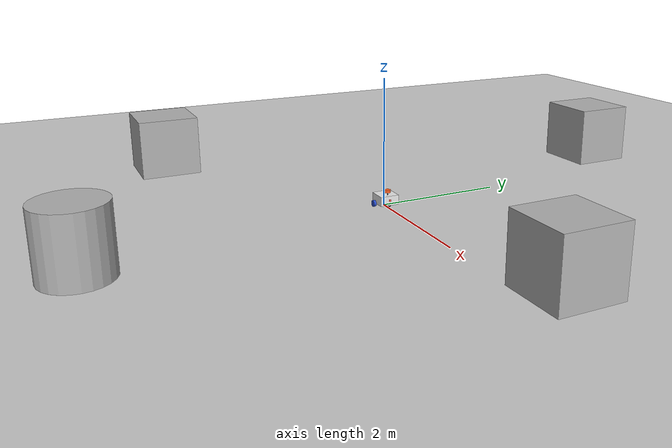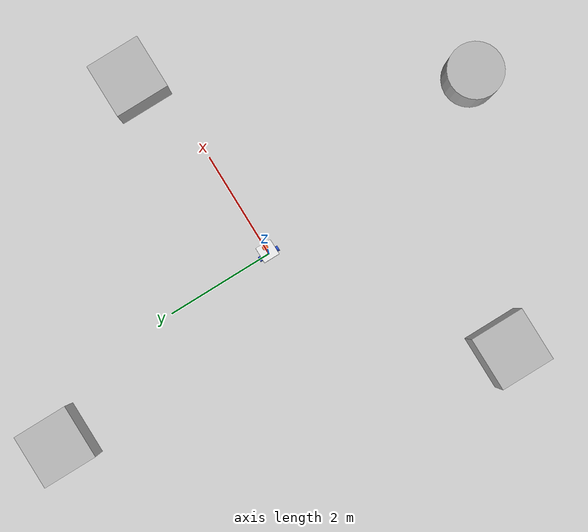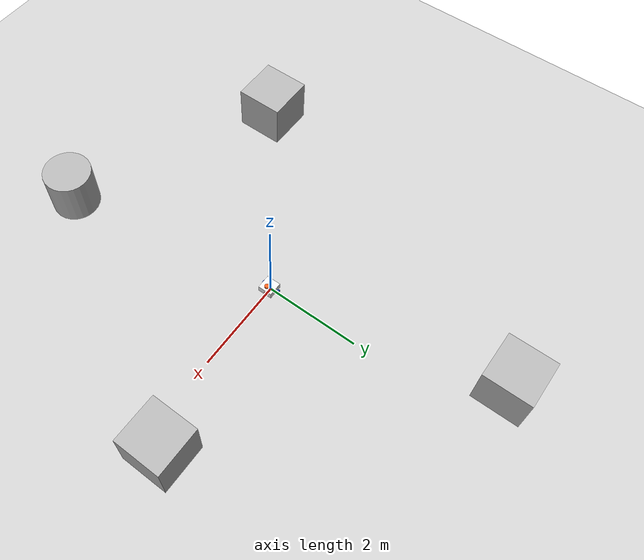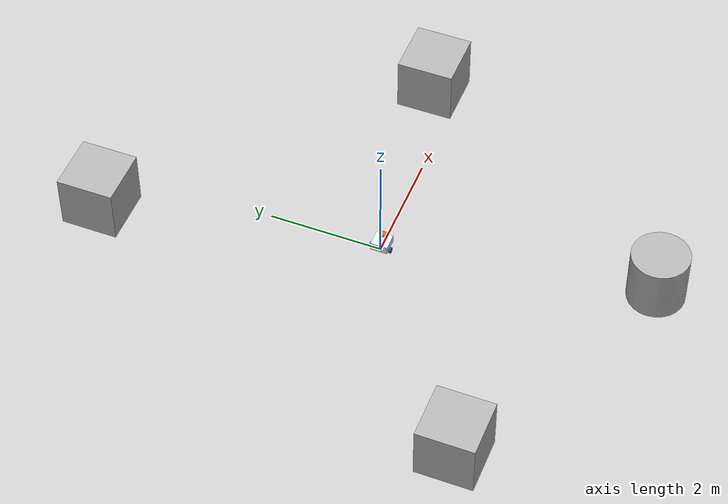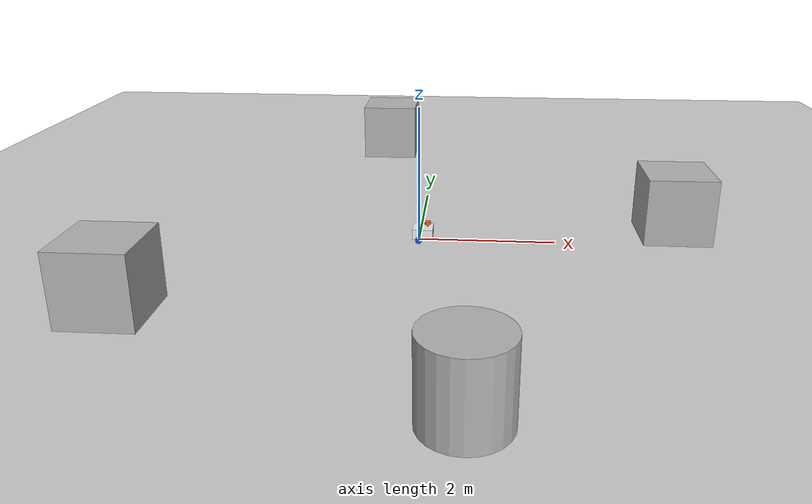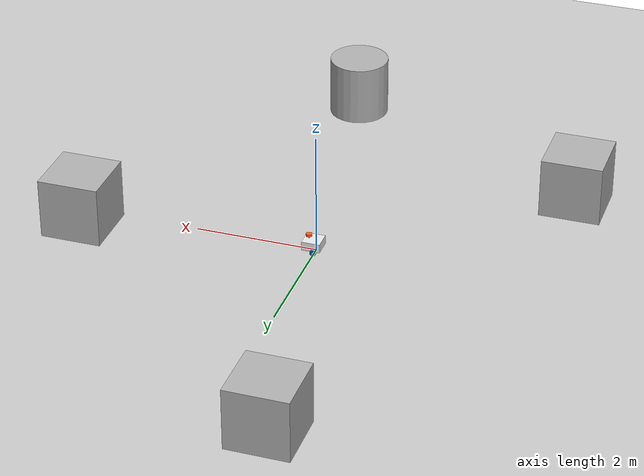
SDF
<sdf version='1.9'>
  <world name='empty'>
    <physics name='1ms' type='ignored'>
      <max_step_size>0.001</max_step_size>
      <real_time_factor>1</real_time_factor>
      <real_time_update_rate>1000</real_time_update_rate>
    </physics>
    <plugin name='gz::sim::systems::Physics' filename='gz-sim-physics-system'/>
    <plugin name='gz::sim::systems::UserCommands' filename='gz-sim-user-commands-system'/>
    <plugin name='gz::sim::systems::SceneBroadcaster' filename='gz-sim-scene-broadcaster-system'/>
    <plugin name='gz::sim::systems::Sensors' filename='gz-sim-sensors-system'>
      <render_engine>ogre2</render_engine>
    </plugin>
    <plugin name='gz::sim::systems::Contact' filename='gz-sim-contact-system'/>
    <gravity>0 0 -9.8</gravity>
    <magnetic_field>6e-06 2.3e-05 -4.2e-05</magnetic_field>
    <atmosphere type='adiabatic'/>
    <scene>
      <ambient>0.4 0.4 0.4 1</ambient>
      <background>0.7 0.7 0.7 1</background>
      <shadows>true</shadows>
    </scene>
    <model name='ground_plane'>
      <static>true</static>
      <link name='link'>
        <collision name='collision'>
          <geometry>
            <plane>
              <normal>0 0 1</normal>
              <size>100 100</size>
            </plane>
          </geometry>
          <surface>
            <friction>
              <ode/>
            </friction>
            <bounce/>
            <contact/>
          </surface>
        </collision>
        <visual name='visual'>
          <geometry>
            <plane>
              <normal>0 0 1</normal>
              <size>100 100</size>
            </plane>
          </geometry>
          <material>
            <ambient>0.8 0.8 0.8 1</ambient>
            <diffuse>0.8 0.8 0.8 1</diffuse>
            <specular>0.8 0.8 0.8 1</specular>
          </material>
        </visual>
        <pose>0 0 0 0 -0 0</pose>
        <inertial>
          <pose>0 0 0 0 -0 0</pose>
          <mass>1</mass>
          <inertia>
            <ixx>1</ixx>
            <ixy>0</ixy>
            <ixz>0</ixz>
            <iyy>1</iyy>
            <iyz>0</iyz>
            <izz>1</izz>
          </inertia>
        </inertial>
        <enable_wind>false</enable_wind>
      </link>
      <pose>0 0 0 0 -0 0</pose>
      <self_collide>false</self_collide>
    </model>
    <model name='my_bot'>
      <link name='base_link'>
        <inertial>
          <pose>0.073143 0 0.083857 0 -0 0</pose>
          <mass>0.69999999999999996</mass>
          <inertia>
            <ixx>0.0072478200000000003</ixx>
            <ixy>0</ixy>
            <ixz>-0.00016791399999999999</ixz>
            <iyy>0.0082012999999999999</iyy>
            <iyz>0</iyz>
            <izz>0.0086784900000000005</izz>
          </inertia>
        </inertial>
        <collision name='base_link_fixed_joint_lump__chassis_link_collision'>
          <pose>0.04999999999999999 0 0.075 0 0 0</pose>
          <geometry>
            <box>
              <size>0.3 0.3 0.15</size>
            </box>
          </geometry>
          <surface>
            <contact>
              <ode/>
            </contact>
            <friction>
              <ode/>
            </friction>
            <bounce/>
          </surface>
        </collision>
        <collision name='base_link_fixed_joint_lump__castor_wheel_collision_1'>
          <pose>0.14 0 0 0 0 0</pose>
          <geometry>
            <sphere>
              <radius>0.050000000000000003</radius>
            </sphere>
          </geometry>
          <surface>
            <contact>
              <ode/>
            </contact>
            <friction>
              <ode>
                <mu>0.001</mu>
                <mu2>0.001</mu2>
              </ode>
            </friction>
            <bounce/>
          </surface>
        </collision>
        <collision name='base_link_fixed_joint_lump__lidar_link_collision_2'>
          <pose>0.122 0 0.212 0 0 0</pose>
          <geometry>
            <cylinder>
              <length>0.040000000000000001</length>
              <radius>0.050000000000000003</radius>
            </cylinder>
          </geometry>
          <surface>
            <contact>
              <ode/>
            </contact>
            <friction>
              <ode/>
            </friction>
            <bounce/>
          </surface>
        </collision>
        <visual name='base_link_fixed_joint_lump__chassis_link_visual'>
          <pose>0.04999999999999999 0 0.075 0 0 0</pose>
          <geometry>
            <box>
              <size>0.3 0.3 0.15</size>
            </box>
          </geometry>
          <material>
            <script>
              <name>Gazebo/White</name>
              <uri>file://media/materials/scripts/gazebo.material</uri>
            </script>
            <diffuse>1 1 1 1</diffuse>
            <ambient>1 1 1 1</ambient>
          </material>
        </visual>
        <visual name='base_link_fixed_joint_lump__camera_link_visual_1'>
          <pose>0.205 0 0.08 0 0 0</pose>
          <geometry>
            <box>
              <size>0.01 0.03 0.03</size>
            </box>
          </geometry>
          <material>
            <diffuse>1 0.325 0.2625 1</diffuse>
            <ambient>1 0.325 0.2625 1</ambient>
          </material>
        </visual>
        <visual name='base_link_fixed_joint_lump__castor_wheel_visual_2'>
          <pose>0.14 0 0 0 0 0</pose>
          <geometry>
            <sphere>
              <radius>0.050000000000000003</radius>
            </sphere>
          </geometry>
          <material>
            <script>
              <name>Gazebo/Black</name>
              <uri>file://media/materials/scripts/gazebo.material</uri>
            </script>
            <diffuse>0 0 0 1</diffuse>
            <ambient>0 0 0 1</ambient>
          </material>
        </visual>
        <visual name='base_link_fixed_joint_lump__lidar_link_visual_3'>
          <pose>0.122 0 0.212 0 0 0</pose>
          <geometry>
            <cylinder>
              <length>0.040000000000000001</length>
              <radius>0.050000000000000003</radius>
            </cylinder>
          </geometry>
          <material>
            <diffuse>1 0.375 0.125 1</diffuse>
            <ambient>1 0.375 0.125 1</ambient>
          </material>
        </visual>
        <visual name='base_link_fixed_joint_lump__lidar_link_visual_4'>
          <pose>0.122 0 0.162 0 0 0</pose>
          <geometry>
            <cylinder>
              <length>0.10000000000000001</length>
              <radius>0.01</radius>
            </cylinder>
          </geometry>
          <material>
            <diffuse>0 0 0 1</diffuse>
            <ambient>0 0 0 1</ambient>
          </material>
        </visual>
        <sensor name='rgb_camera' type='camera'>
          <pose>0.205 0 0.08 0 -0 0</pose>
          <topic>camera/image_raw</topic>
          <update_rate>10</update_rate>
          <enable_metrics>false</enable_metrics>
          <camera name='__default__'>
            <pose>0 0 0 0 -0 0</pose>
            <horizontal_fov>1.089</horizontal_fov>
            <image>
              <width>640</width>
              <height>480</height>
              <format>RGB_INT8</format>
              <anti_aliasing>4</anti_aliasing>
            </image>
            <camera_info_topic>__default__</camera_info_topic>
            <trigger_topic></trigger_topic>
            <triggered>false</triggered>
            <clip>
              <near>0.050000000000000003</near>
              <far>8</far>
            </clip>
            <save enabled='false'>
              <path>__default__</path>
            </save>
            <visibility_mask>4294967295</visibility_mask>
            <noise>
              <type>none</type>
              <mean>0</mean>
              <stddev>0</stddev>
            </noise>
            <distortion>
              <k1>0</k1>
              <k2>0</k2>
              <k3>0</k3>
              <p1>0</p1>
              <p2>0</p2>
              <center>0.5 0.5</center>
            </distortion>
            <lens>
              <type>stereographic</type>
              <scale_to_hfov>true</scale_to_hfov>
              <cutoff_angle>1.5708</cutoff_angle>
              <env_texture_size>256</env_texture_size>
            </lens>
            <optical_frame_id></optical_frame_id>
          </camera>
        </sensor>
        <sensor name='lidar_link' type='gpu_lidar'>
          <pose>0.122 0 0.212 0 -0 0</pose>
          <topic>scan</topic>
          <update_rate>10</update_rate>
          <enable_metrics>false</enable_metrics>
          <lidar>
            <scan>
              <horizontal>
                <samples>360</samples>
                <resolution>1</resolution>
                <min_angle>-3.1400000000000001</min_angle>
                <max_angle>3.1400000000000001</max_angle>
              </horizontal>
              <vertical>
                <samples>1</samples>
                <min_angle>0</min_angle>
                <max_angle>0</max_angle>
                <resolution>1</resolution>
              </vertical>
            </scan>
            <range>
              <min>0.29999999999999999</min>
              <max>12</max>
              <resolution>0</resolution>
            </range>
            <noise>
              <type>none</type>
              <mean>0</mean>
              <stddev>0</stddev>
            </noise>
            <visibility_mask>4294967295</visibility_mask>
          </lidar>
        </sensor>
        <pose>0 0 0 0 -0 0</pose>
        <enable_wind>false</enable_wind>
      </link>
      <joint name='left_wheel_joint' type='revolute'>
        <pose>0 0 0 0 -0 0</pose>
        <parent>base_link</parent>
        <child>left_wheel</child>
        <axis>
          <xyz>0 0 1</xyz>
          <limit>
            <lower>-10000000000000000</lower>
            <upper>10000000000000000</upper>
            <effort>inf</effort>
            <velocity>inf</velocity>
            <stiffness>100000000</stiffness>
            <dissipation>1</dissipation>
          </limit>
          <dynamics>
            <spring_reference>0</spring_reference>
            <spring_stiffness>0</spring_stiffness>
            <damping>0</damping>
            <friction>0</friction>
          </dynamics>
        </axis>
      </joint>
      <link name='left_wheel'>
        <pose>-0 0.175 0 -1.57079 0 0</pose>
        <inertial>
          <pose>0 0 0 0 -0 0</pose>
          <mass>0.10000000000000001</mass>
          <inertia>
            <ixx>7.5833299999999998e-05</ixx>
            <ixy>0</ixy>
            <ixz>0</ixz>
            <iyy>7.5833299999999998e-05</iyy>
            <iyz>0</iyz>
            <izz>0.000125</izz>
          </inertia>
        </inertial>
        <collision name='left_wheel_collision'>
          <pose>0 0 0 0 0 0</pose>
          <geometry>
            <cylinder>
              <length>0.040000000000000001</length>
              <radius>0.050000000000000003</radius>
            </cylinder>
          </geometry>
          <surface>
            <contact>
              <ode/>
            </contact>
            <friction>
              <ode>
                <mu>0.5</mu>
                <mu2>0.5</mu2>
              </ode>
            </friction>
            <bounce/>
          </surface>
        </collision>
        <visual name='left_wheel_visual'>
          <pose>0 0 0 0 0 0</pose>
          <geometry>
            <cylinder>
              <length>0.040000000000000001</length>
              <radius>0.050000000000000003</radius>
            </cylinder>
          </geometry>
          <material>
            <script>
              <name>Gazebo/Blue</name>
              <uri>file://media/materials/scripts/gazebo.material</uri>
            </script>
            <diffuse>0.25 0.25 1 1</diffuse>
            <ambient>0.25 0.25 1 1</ambient>
          </material>
        </visual>
        <enable_wind>false</enable_wind>
      </link>
      <joint name='right_wheel_joint' type='revolute'>
        <pose>0 0 0 0 -0 0</pose>
        <parent>base_link</parent>
        <child>right_wheel</child>
        <axis>
          <xyz>0 0 -1</xyz>
          <limit>
            <lower>-10000000000000000</lower>
            <upper>10000000000000000</upper>
            <effort>inf</effort>
            <velocity>inf</velocity>
            <stiffness>100000000</stiffness>
            <dissipation>1</dissipation>
          </limit>
          <dynamics>
            <spring_reference>0</spring_reference>
            <spring_stiffness>0</spring_stiffness>
            <damping>0</damping>
            <friction>0</friction>
          </dynamics>
        </axis>
      </joint>
      <link name='right_wheel'>
        <pose>0 -0.175 0 1.57079 -0 -0</pose>
        <inertial>
          <pose>0 0 0 0 -0 0</pose>
          <mass>0.10000000000000001</mass>
          <inertia>
            <ixx>7.5833299999999998e-05</ixx>
            <ixy>0</ixy>
            <ixz>0</ixz>
            <iyy>7.5833299999999998e-05</iyy>
            <iyz>0</iyz>
            <izz>0.000125</izz>
          </inertia>
        </inertial>
        <collision name='right_wheel_collision'>
          <pose>0 0 0 0 0 0</pose>
          <geometry>
            <cylinder>
              <length>0.040000000000000001</length>
              <radius>0.050000000000000003</radius>
            </cylinder>
          </geometry>
          <surface>
            <contact>
              <ode/>
            </contact>
            <friction>
              <ode>
                <mu>0.5</mu>
                <mu2>0.5</mu2>
              </ode>
            </friction>
            <bounce/>
          </surface>
        </collision>
        <visual name='right_wheel_visual'>
          <pose>0 0 0 0 0 0</pose>
          <geometry>
            <cylinder>
              <length>0.040000000000000001</length>
              <radius>0.050000000000000003</radius>
            </cylinder>
          </geometry>
          <material>
            <script>
              <name>Gazebo/Blue</name>
              <uri>file://media/materials/scripts/gazebo.material</uri>
            </script>
            <diffuse>0.25 0.25 1 1</diffuse>
            <ambient>0.25 0.25 1 1</ambient>
          </material>
        </visual>
        <enable_wind>false</enable_wind>
      </link>
      <plugin name='gz_ros2_control::GazeboSimROS2ControlPlugin' filename='libgz_ros2_control-system.so'>
        <parameters>/home/josh/diff_robot/install/diff_drive_robot/share/diff_drive_robot/config/controller.yaml</parameters>
      </plugin>
      <frame name='base_footprint_joint' attached_to='base_link'>
        <pose>0 0 0 0 -0 0</pose>
      </frame>
      <frame name='base_footprint' attached_to='base_footprint_joint'/>
      <frame name='camera_optical_joint' attached_to='camera_link'>
        <pose>0 0 0 -1.5708 -0 -1.5708</pose>
      </frame>
      <frame name='camera_link_optical' attached_to='camera_optical_joint'/>
      <frame name='camera_joint' attached_to='chassis_link'>
        <pose>0.305 0 0.08 0 -0 0</pose>
      </frame>
      <frame name='camera_link' attached_to='camera_joint'/>
      <frame name='castor_wheel_joint' attached_to='chassis_link'>
        <pose>0.24 0 0 0 -0 0</pose>
      </frame>
      <frame name='castor_wheel' attached_to='castor_wheel_joint'/>
      <frame name='chassis_joint' attached_to='base_link'>
        <pose>-0.1 0 0 0 -0 0</pose>
      </frame>
      <frame name='chassis_link' attached_to='chassis_joint'/>
      <frame name='lidar_link_joint' attached_to='base_link'>
        <pose>0.122 0 0.212 0 -0 0</pose>
      </frame>
      <frame name='lidar_link' attached_to='lidar_link_joint'/>
      <pose>0 0 0.049999 -0 0 -0</pose>
      <static>false</static>
      <self_collide>false</self_collide>
    </model>
    <model name='cylinder'>
      <pose>0.770744 -4.61219 0.499999 -0 -0 -0</pose>
      <link name='cylinder_link'>
        <inertial>
          <inertia>
            <ixx>0.14580000000000001</ixx>
            <ixy>0</ixy>
            <ixz>0</ixz>
            <iyy>0.14580000000000001</iyy>
            <iyz>0</iyz>
            <izz>0.125</izz>
          </inertia>
          <mass>1</mass>
          <pose>0 0 0 0 -0 0</pose>
        </inertial>
        <collision name='cylinder_collision'>
          <geometry>
            <cylinder>
              <radius>0.5</radius>
              <length>1</length>
            </cylinder>
          </geometry>
          <surface>
            <friction>
              <ode/>
            </friction>
            <bounce/>
            <contact/>
          </surface>
        </collision>
        <visual name='cylinder_visual'>
          <geometry>
            <cylinder>
              <radius>0.5</radius>
              <length>1</length>
            </cylinder>
          </geometry>
          <material>
            <ambient>0.3 0.3 0.3 1</ambient>
            <diffuse>0.7 0.7 0.7 1</diffuse>
            <specular>1 1 1 1</specular>
          </material>
        </visual>
        <pose>0 0 0 0 -0 0</pose>
        <enable_wind>false</enable_wind>
      </link>
      <static>false</static>
      <self_collide>false</self_collide>
    </model>
    <model name='box'>
      <pose>-0.908306 4.78665 0.5 0 0 -0</pose>
      <link name='box_link'>
        <inertial>
          <inertia>
            <ixx>0.16666</ixx>
            <ixy>0</ixy>
            <ixz>0</ixz>
            <iyy>0.16666</iyy>
            <iyz>0</iyz>
            <izz>0.16666</izz>
          </inertia>
          <mass>1</mass>
          <pose>0 0 0 0 -0 0</pose>
        </inertial>
        <collision name='box_collision'>
          <geometry>
            <box>
              <size>1 1 1</size>
            </box>
          </geometry>
          <surface>
            <friction>
              <ode/>
            </friction>
            <bounce/>
            <contact/>
          </surface>
        </collision>
        <visual name='box_visual'>
          <geometry>
            <box>
              <size>1 1 1</size>
            </box>
          </geometry>
          <material>
            <ambient>0.3 0.3 0.3 1</ambient>
            <diffuse>0.7 0.7 0.7 1</diffuse>
            <specular>1 1 1 1</specular>
          </material>
        </visual>
        <pose>0 0 0 0 -0 0</pose>
        <enable_wind>false</enable_wind>
      </link>
      <static>false</static>
      <self_collide>false</self_collide>
    </model>
    <model name='box_0'>
      <pose>3.79362 0.471706 0.5 0 0 -0</pose>
      <link name='box_link'>
        <inertial>
          <inertia>
            <ixx>0.16666</ixx>
            <ixy>0</ixy>
            <ixz>0</ixz>
            <iyy>0.16666</iyy>
            <iyz>0</iyz>
            <izz>0.16666</izz>
          </inertia>
          <mass>1</mass>
          <pose>0 0 0 0 -0 0</pose>
        </inertial>
        <collision name='box_collision'>
          <geometry>
            <box>
              <size>1 1 1</size>
            </box>
          </geometry>
          <surface>
            <friction>
              <ode/>
            </friction>
            <bounce/>
            <contact/>
          </surface>
        </collision>
        <visual name='box_visual'>
          <geometry>
            <box>
              <size>1 1 1</size>
            </box>
          </geometry>
          <material>
            <ambient>0.3 0.3 0.3 1</ambient>
            <diffuse>0.7 0.7 0.7 1</diffuse>
            <specular>1 1 1 1</specular>
          </material>
        </visual>
        <pose>0 0 0 0 -0 0</pose>
        <enable_wind>false</enable_wind>
      </link>
      <static>false</static>
      <self_collide>false</self_collide>
    </model>
    <model name='box_1'>
      <pose>-3.56016 -2.63641 0.5 0 0 -0</pose>
      <link name='box_link'>
        <inertial>
          <inertia>
            <ixx>0.16666</ixx>
            <ixy>0</ixy>
            <ixz>0</ixz>
            <iyy>0.16666</iyy>
            <iyz>0</iyz>
            <izz>0.16666</izz>
          </inertia>
          <mass>1</mass>
          <pose>0 0 0 0 -0 0</pose>
        </inertial>
        <collision name='box_collision'>
          <geometry>
            <box>
              <size>1 1 1</size>
            </box>
          </geometry>
          <surface>
            <friction>
              <ode/>
            </friction>
            <bounce/>
            <contact/>
          </surface>
        </collision>
        <visual name='box_visual'>
          <geometry>
            <box>
              <size>1 1 1</size>
            </box>
          </geometry>
          <material>
            <ambient>0.3 0.3 0.3 1</ambient>
            <diffuse>0.7 0.7 0.7 1</diffuse>
            <specular>1 1 1 1</specular>
          </material>
        </visual>
        <pose>0 0 0 0 -0 0</pose>
        <enable_wind>false</enable_wind>
      </link>
      <static>false</static>
      <self_collide>false</self_collide>
    </model>
    <light name='sun' type='directional'>
      <pose>0 0 10 0 -0 0</pose>
      <cast_shadows>true</cast_shadows>
      <intensity>1</intensity>
      <direction>-0.5 0.1 -0.9</direction>
      <diffuse>0.8 0.8 0.8 1</diffuse>
      <specular>0.2 0.2 0.2 1</specular>
      <attenuation>
        <range>1000</range>
        <linear>0.01</linear>
        <constant>0.90000000000000002</constant>
        <quadratic>0.001</quadratic>
      </attenuation>
      <spot>
        <inner_angle>0</inner_angle>
        <outer_angle>0</outer_angle>
        <falloff>0</falloff>
      </spot>
    </light>
  </world>
</sdf>
